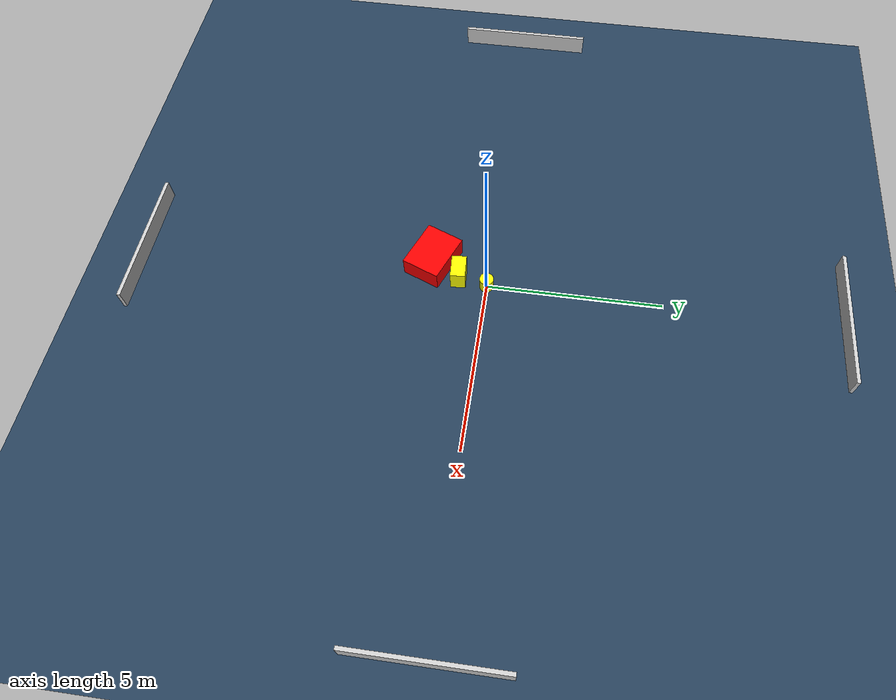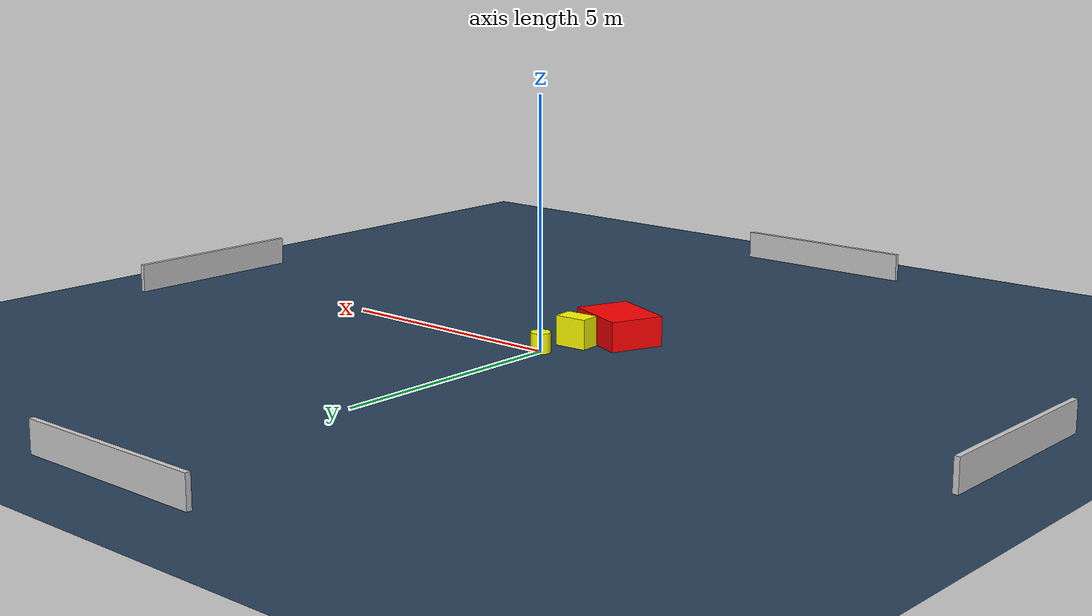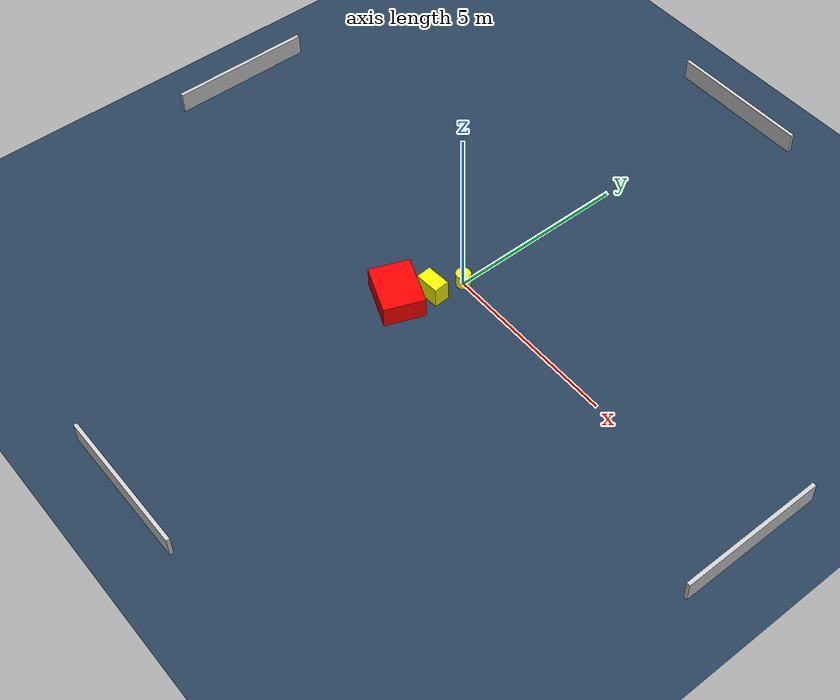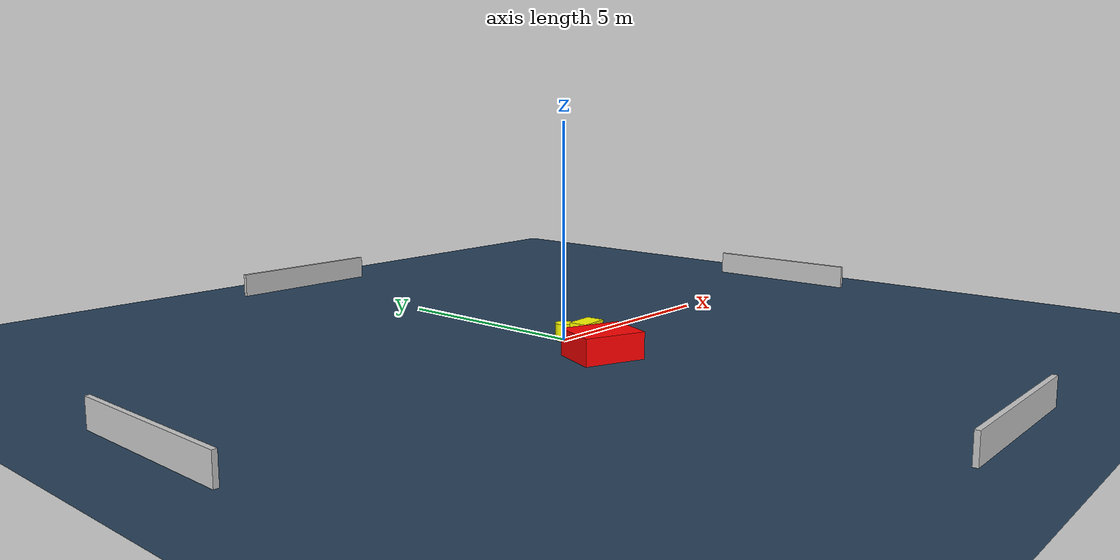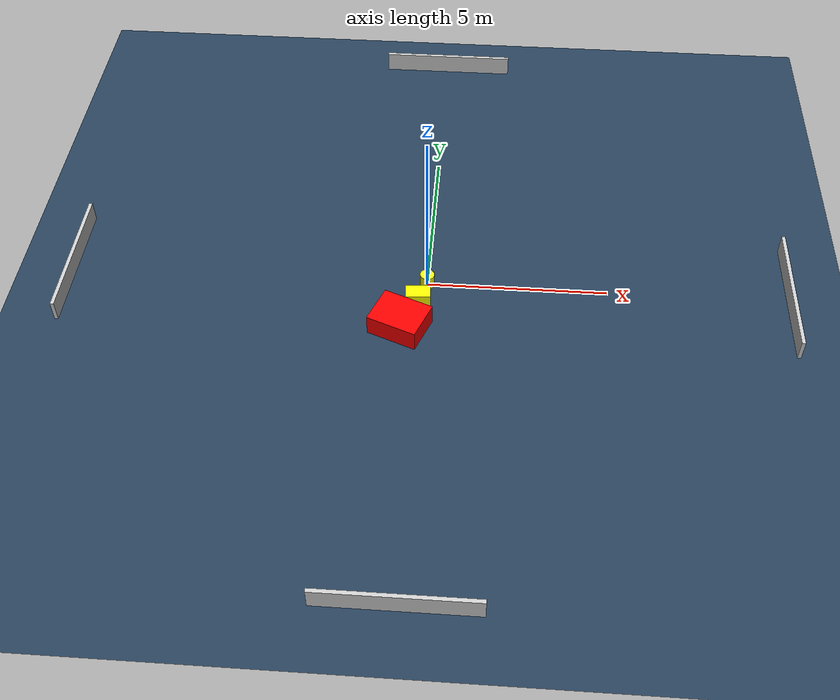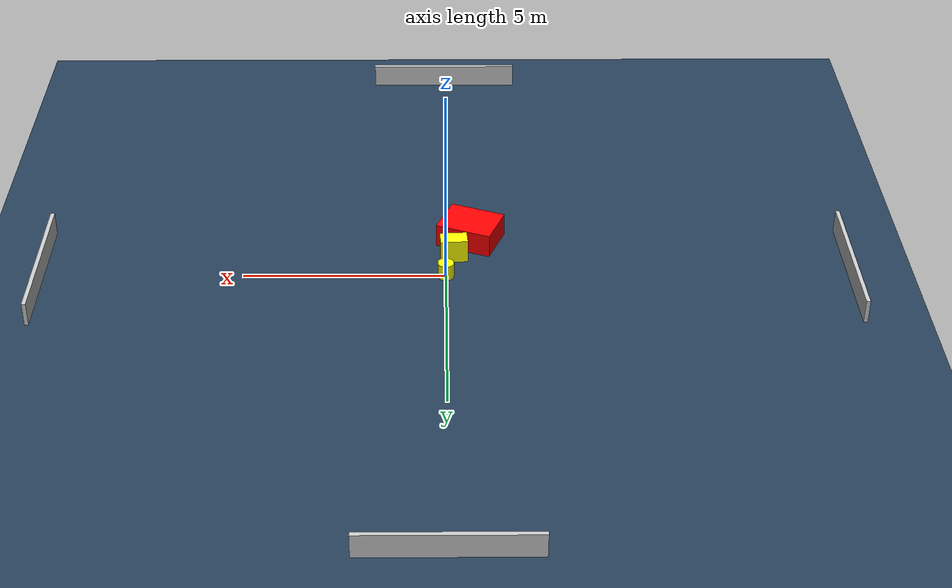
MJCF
<?xml version="1.0" ?>
<mujoco model="generated_environment">
  <option timestep="0.01" integrator="RK4" cone="elliptic"/>
  <default>
    <geom density="1"/>
  </default>
  <asset>
    <texture builtin="gradient" height="3072" name="skybox" rgb1="0.3 0.5 0.7" rgb2="0 0 0" type="skybox" width="512"/>
    <texture builtin="checker" height="300" name="groundplane" rgb1="0.2 0.3 0.4" rgb2="0.1 0.2 0.3" type="2d" width="300"/>
    <material name="groundplane" reflectance="0.2" texrepeat="5 5" texture="groundplane"/>
  </asset>
  <worldbody>
    <light dir="0 0 -1" directional="true" pos="0 0 1.5"/>
    <geom condim="3" friction="0.5 0.005 0.001" material="groundplane" name="floor" pos="0 0 0" size="0 0 0.05" type="plane"/>
    <body name="walls">
      <geom name="wall_1" condim="4" pos="-10.0 0.0 0.3" rgba="0.800000011920929 0.800000011920929 0.800000011920929 1.0" size="0.05 2.0 0.3" type="box"/>
      <geom name="wall_2" condim="4" pos="10.0 0.0 0.3" rgba="0.800000011920929 0.800000011920929 0.800000011920929 1.0" size="0.05 2.0 0.3" type="box"/>
      <geom name="wall_3" condim="4" pos="0.0 -10.0 0.3" rgba="0.800000011920929 0.800000011920929 0.800000011920929 1.0" size="2.0 0.05 0.3" type="box"/>
      <geom name="wall_4" condim="4" pos="0.0 10.0 0.3" rgba="0.800000011920929 0.800000011920929 0.800000011920929 1.0" size="2.0 0.05 0.3" type="box"/>
    </body>
    <body name="robot">
      <joint name="joint_x" type="slide" pos="0 0 0" axis="1 0 0"/>
      <joint name="joint_y" type="slide" pos="0 0 0" axis="0 1 0"/>
      <geom name="robot" type="cylinder" pos="0.0 0.0 0.2" size="0.2 0.2 0.0" mass="5.0" friction="1.0 0.005 0.0001" condim="4" rgba="1.0 1.0 0.0 1.0"/>
    </body>
    <body name="obstacle_1_movable">
      <geom name="obstacle_1_movable" condim="4" pos="-0.20108904235748032 -0.8307089155483679 0.3" euler="0 0 93.8650839466654" friction="0.0 0.005 0.001" rgba="1.0 1.0 0.0 1.0" size="0.21211130528646086 0.3391809607087851 0.3" type="box" mass="0.1"/>
      <joint type="free"/>
    </body>
    <body name="obstacle_2_static">
      <geom name="obstacle_2_static" condim="4" pos="-0.6321433918133968 -1.6368166029589084 0.3" euler="0 0 158.32167562481743" friction="0.0 0.005 0.001" rgba="1.0 0.0 0.0 1.0" size="0.7112171681602266 0.5555594052165468 0.3" type="box"/>
    </body>
  </worldbody>
  <actuator>
    <motor name="actuator_x" joint="joint_x" gear="1" ctrlrange="-1 1"/>
    <motor name="actuator_y" joint="joint_y" gear="1" ctrlrange="-1 1"/>
  </actuator>
</mujoco>
